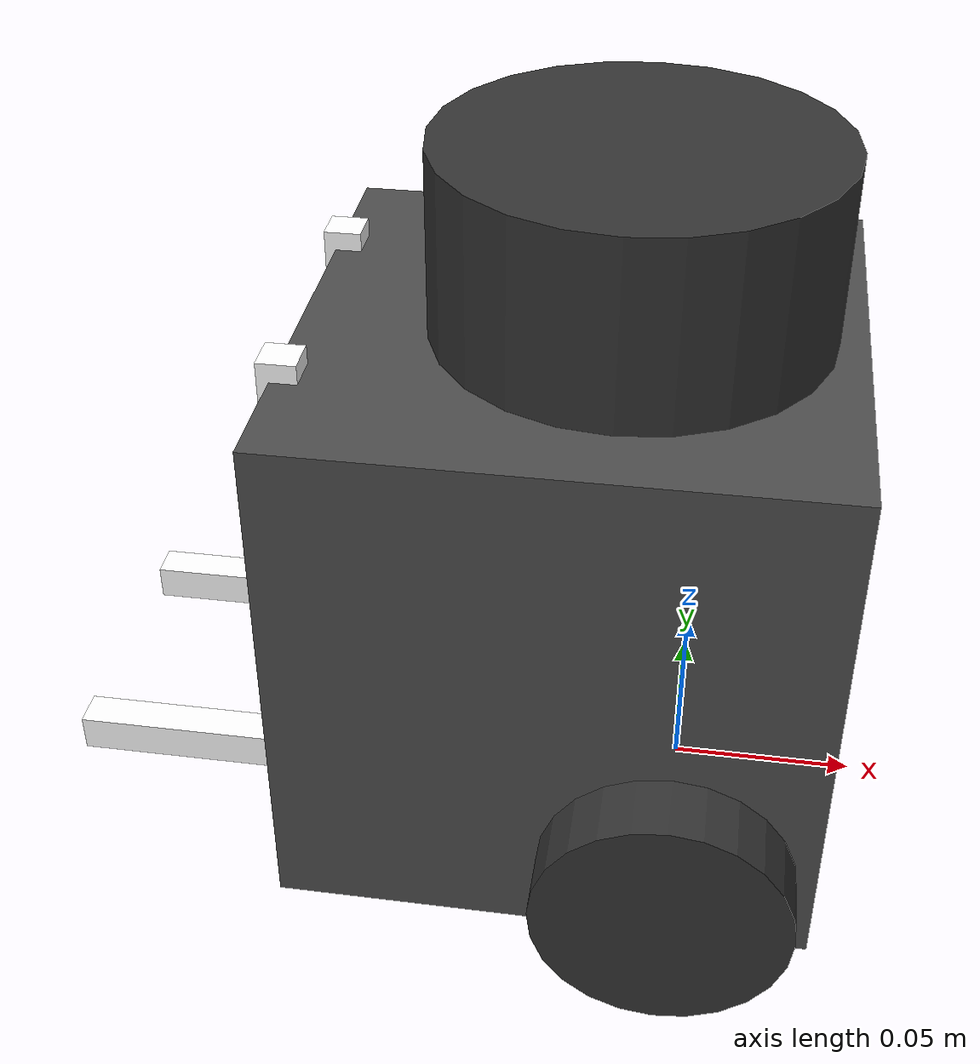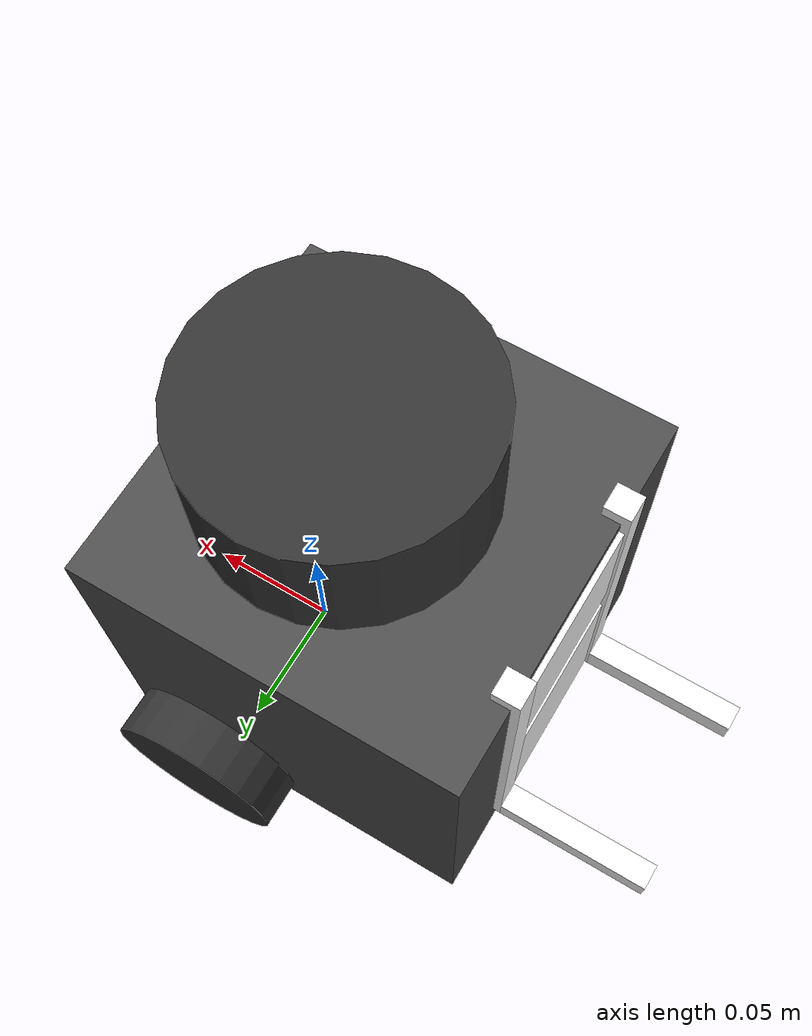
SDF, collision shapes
<?xml version="1.0" ?>
<sdf version="1.6">
  <model name="turtlebot3_burger_cam">
    <pose>0.0 0.0 0.0 0.0 0.0 0.0</pose>

    <link name="base_footprint"/>

    <link name="base_link">

      <inertial>
        <pose>-0.032 0 0.070 0 0 0</pose>
        <inertia>
          <ixx>7.2397393e-01</ixx>
          <ixy>4.686399e-10</ixy>
          <ixz>-1.09525703e-08</ixz>
          <iyy>7.2397393e-01</iyy>
          <iyz>2.8582649e-09</iyz>
          <izz>6.53050163e-01</izz>
        </inertia>
        <mass>8.2573504e-01</mass>
      </inertial>

      <collision name="base_collision">
        <pose>-0.032 0 0.070 0 0 0</pose>
        <geometry>
          <box>
            <size>0.140 0.140 0.140</size>
          </box>
        </geometry>
      </collision>

      <visual name="base_visual">
        <pose>-0.032 0 0 0 0 0</pose>
        <geometry>
          <mesh>
            <uri>model://turtlebot3_common/meshes/bases/burger_base.stl</uri>
            <scale>0.001 0.001 0.001</scale>
          </mesh>
        </geometry>
        <material>
          <ambient>0.3 0.3 0.3 1.0</ambient>
          <diffuse>0.3 0.3 0.3 1.0</diffuse>
        </material>
      </visual>
    </link>

    <link name="imu_link">
      <sensor name="tb3_imu" type="imu">
        <always_on>true</always_on>
        <update_rate>200</update_rate>
        <topic>imu</topic>
        <imu>
          <angular_velocity>
            <x>
              <noise type="gaussian">
                <mean>0.0</mean>
                <stddev>2e-4</stddev>
              </noise>
            </x>
            <y>
              <noise type="gaussian">
                <mean>0.0</mean>
                <stddev>2e-4</stddev>
              </noise>
            </y>
            <z>
              <noise type="gaussian">
                <mean>0.0</mean>
                <stddev>2e-4</stddev>
              </noise>
            </z>
          </angular_velocity>
          <linear_acceleration>
            <x>
              <noise type="gaussian">
                <mean>0.0</mean>
                <stddev>1.7e-2</stddev>
              </noise>
            </x>
            <y>
              <noise type="gaussian">
                <mean>0.0</mean>
                <stddev>1.7e-2</stddev>
              </noise>
            </y>
            <z>
              <noise type="gaussian">
                <mean>0.0</mean>
                <stddev>1.7e-2</stddev>
              </noise>
            </z>
          </linear_acceleration>
        </imu>
      </sensor>
    </link>

    <link name="base_scan">
      <inertial>
        <pose>-0.020 0 0.161 0 0 0</pose>
        <inertia>
          <ixx>0.001</ixx>
          <ixy>0.000</ixy>
          <ixz>0.000</ixz>
          <iyy>0.001</iyy>
          <iyz>0.000</iyz>
          <izz>0.001</izz>
        </inertia>
        <mass>0.114</mass>
      </inertial>

      <collision name="lidar_sensor_collision">
        <pose>-0.020 0 0.161 0 0 0</pose>
        <geometry>
          <cylinder>
            <radius>0.0508</radius>
            <length>0.055</length>
          </cylinder>
        </geometry>
      </collision>

      <visual name="lidar_sensor_visual">
        <pose>-0.032 0 0.171 0 0 0</pose>
        <geometry>
          <mesh>
            <uri>model://turtlebot3_common/meshes/sensors/lds.stl</uri>
            <scale>0.001 0.001 0.001</scale>
          </mesh>
        </geometry>
        <material>
          <ambient>0.2 0.2 0.2 1.0</ambient>
          <diffuse>0.2 0.2 0.2 1.0</diffuse>
        </material>
      </visual>

      <sensor name="hls_lfcd_lds" type="gpu_lidar">
        <always_on>true</always_on>
        <visualize>false</visualize>
        <pose>-0.032 0 0.171 0 0 0</pose>
        <update_rate>5</update_rate>
        <topic>scan</topic>
        <gz_frame_id>base_scan</gz_frame_id>
        <lidar>
          <scan>
            <horizontal>
              <samples>360</samples>
              <resolution>1.000000</resolution>
              <min_angle>0.000000</min_angle>
              <max_angle>6.280000</max_angle>
            </horizontal>
          </scan>
          <range>
            <min>0.120000</min>
            <max>3.5</max>
            <resolution>0.015000</resolution>
          </range>
          <noise>
            <type>gaussian</type>
            <mean>0.0</mean>
            <stddev>0.01</stddev>
          </noise>
        </lidar>
      </sensor>
    </link>

    <link name="wheel_left_link">

      <inertial>
        <pose>0 0.08 0.023 -1.57 0 0</pose>
        <inertia>
          <ixx>1.8158194e-03</ixx>
          <ixy>-9.3392e-12</ixy>
          <ixz>1.04909e-11</ixz>
          <iyy>3.2922126e-03</iyy>
          <iyz>5.75694e-11</iyz>
          <izz>1.8158194e-03</izz>
        </inertia>
        <mass>2.8498940e-02</mass>
      </inertial>

      <collision name="wheel_left_collision">
        <pose>0 0.08 0.023 -1.57 0 0</pose>
        <geometry>
          <cylinder>
            <radius>0.033</radius>
            <length>0.018</length>
          </cylinder>
        </geometry>
        <surface>
          <!-- This friction pamareter don't contain reliable data!! -->
          <friction>
            <ode>
              <mu>100000.0</mu>
              <mu2>100000.0</mu2>
              <fdir1>0 0 0</fdir1>
              <slip1>0.0</slip1>
              <slip2>0.0</slip2>
            </ode>
          </friction>
          <contact>
            <ode>
              <soft_cfm>0</soft_cfm>
              <soft_erp>0.2</soft_erp>
              <kp>1e+5</kp>
              <kd>1</kd>
              <max_vel>0.01</max_vel>
              <min_depth>0.001</min_depth>
            </ode>
          </contact>
        </surface>
      </collision>

      <visual name="wheel_left_visual">
        <pose>0 0.08 0.023 0 0 0</pose>
        <geometry>
          <mesh>
            <uri>model://turtlebot3_common/meshes/wheels/left_tire.stl</uri>
            <scale>0.001 0.001 0.001</scale>
          </mesh>
        </geometry>
        <material>
          <ambient>0.2 0.2 0.2 1.0</ambient>
          <diffuse>0.2 0.2 0.2 1.0</diffuse>
        </material>
      </visual>
    </link>

    <link name="wheel_right_link">

      <inertial>
        <pose>0.0 -0.08 0.023 -1.57 0 0</pose>
        <inertia>
          <ixx>1.8158194e-03</ixx>
          <ixy>-9.3392e-12</ixy>
          <ixz>1.04909e-11</ixz>
          <iyy>3.2922126e-03</iyy>
          <iyz>5.75694e-11</iyz>
          <izz>1.8158194e-03</izz>
        </inertia>
        <mass>2.8498940e-02</mass>
      </inertial>

      <collision name="wheel_right_collision">
        <pose>0.0 -0.08 0.023 -1.57 0 0</pose>
        <geometry>
          <cylinder>
            <radius>0.033</radius>
            <length>0.018</length>
          </cylinder>
        </geometry>
        <surface>
          <!-- This friction pamareter don't contain reliable data!! -->
          <friction>
            <ode>
              <mu>100000.0</mu>
              <mu2>100000.0</mu2>
              <fdir1>0 0 0</fdir1>
              <slip1>0.0</slip1>
              <slip2>0.0</slip2>
            </ode>
          </friction>
          <contact>
            <ode>
              <soft_cfm>0</soft_cfm>
              <soft_erp>0.2</soft_erp>
              <kp>1e+5</kp>
              <kd>1</kd>
              <max_vel>0.01</max_vel>
              <min_depth>0.001</min_depth>
            </ode>
          </contact>
        </surface>
      </collision>

      <visual name="wheel_right_visual">
        <pose>0.0 -0.08 0.023 0 0 0</pose>
        <geometry>
          <mesh>
            <uri>model://turtlebot3_common/meshes/wheels/right_tire.stl</uri>
            <scale>0.001 0.001 0.001</scale>
          </mesh>
        </geometry>
        <material>
          <ambient>0.2 0.2 0.2 1.0</ambient>
          <diffuse>0.2 0.2 0.2 1.0</diffuse>
        </material>
      </visual>
    </link>

    <link name='caster_back_link'>
      <pose>-0.081 0 -0.004 -1.57 0 0</pose>
      <inertial>
        <mass>0.005</mass>
        <inertia>
          <ixx>0.001</ixx>
          <ixy>0.000</ixy>
          <ixz>0.000</ixz>
          <iyy>0.001</iyy>
          <iyz>0.000</iyz>
          <izz>0.001</izz>
        </inertia>
      </inertial>
      <collision name='collision'>
        <geometry>
          <sphere>
            <radius>0.005000</radius>
          </sphere>
        </geometry>
        <surface>
          <contact>
            <ode>
              <soft_cfm>0</soft_cfm>
              <soft_erp>0.2</soft_erp>
              <kp>1e+5</kp>
              <kd>1</kd>
              <max_vel>0.01</max_vel>
              <min_depth>0.001</min_depth>
            </ode>
          </contact>
        </surface>
      </collision>
    </link>

    <link name="camera_link">

      <inertial>
        <pose>0.076 0.0 0.093 0 0 0</pose>
        <inertia>
          <ixx>0.001</ixx>
          <ixy>0.000</ixy>
          <ixz>0.000</ixz>
          <iyy>0.001</iyy>
          <iyz>0.000</iyz>
          <izz>0.001</izz>
        </inertia>
        <mass>0.035</mass>
      </inertial>

      <pose>0.076 0.0 0.093 0 0 0</pose>
      <sensor name="camera" type="wideanglecamera">
        <always_on>true</always_on>
        <visualize>true</visualize>
        <update_rate>30</update_rate>
        <topic>camera/image_raw</topic>
        <gz_frame_id>camera_rgb_frame</gz_frame_id>
        <camera name="pi_cam">
          <camera_info_topic>camera/camera_info</camera_info_topic>
          <horizontal_fov>3.183</horizontal_fov>
          <image>
            <width>320</width>
            <height>240</height>
            <format>R8G8B8</format>
          </image>
          <clip>
            <near>0.03</near>
            <far>100</far>
          </clip>
          <lens>
            <type>custom</type>
            <custom_function>
              <c1>1.05</c1>
              <c2>4</c2>
              <f>1.0</f>
              <fun>tan</fun>
            </custom_function>
            <scale_to_hfov>true</scale_to_hfov>
            <cutoff_angle>3.1415</cutoff_angle>
            <env_texture_size>512</env_texture_size>
          </lens>
        </camera>
      </sensor>
    </link>

    <joint name="base_joint" type="fixed">
      <parent>base_footprint</parent>
      <child>base_link</child>
      <pose>0.0 0.0 0.010 0 0 0</pose>
    </joint>

    <joint name="wheel_left_joint" type="revolute">
      <parent>base_link</parent>
      <child>wheel_left_link</child>
      <pose>0.0 0.08 0.023 -1.57 0 0</pose>
      <axis>
        <xyz>0 0 1</xyz>
        <limit>
          <effort>20</effort>
        </limit>
      </axis>
    </joint>

    <joint name="wheel_right_joint" type="revolute">
      <parent>base_link</parent>
      <child>wheel_right_link</child>
      <pose>0.0 -0.08 0.023 -1.57 0 0</pose>
      <axis>
        <xyz>0 0 1</xyz>
        <limit>
          <effort>20</effort>
        </limit>
      </axis>
    </joint>

    <joint name='caster_back_joint' type='ball'>
      <parent>base_link</parent>
      <child>caster_back_link</child>
    </joint>

    <joint name="imu_joint" type="fixed">
      <parent>base_link</parent>
      <child>imu_link</child>
      <pose>-0.032 0 0.068 0 0 0</pose>
      <axis>
        <xyz>0 0 1</xyz>
      </axis>
    </joint>

    <joint name="lidar_joint" type="fixed">
      <parent>base_link</parent>
      <child>base_scan</child>
      <pose>-0.032 0 0.171 0 0 0</pose>
      <axis>
        <xyz>0 0 1</xyz>
      </axis>
    </joint>

    <joint name="camera_joint" type="fixed">
      <parent>base_link</parent>
      <child>camera_link</child>
      <pose>0.040 -0.000 0.110 0 0 0</pose>
      <axis>
        <xyz>0 0 1</xyz>
      </axis>
    </joint>

    <joint name="joint_base1" type="fixed">
      <parent>base_link</parent>
      <child>link_base1</child>
    </joint>

    <link name="link_base1">
      <pose>-0.1 0.0 0.11 0 0 0</pose>

      <inertial>
        <mass>0.0</mass>
        <inertia>
          <ixx>0</ixx>
          <ixy>0</ixy>
          <ixz>0</ixz>
          <iyy>0</iyy>
          <iyz>0</iyz>
          <izz>0</izz>
        </inertia>
      </inertial>

      <visual name="link_base1_visual">
        <geometry>
          <box>
            <size>0.008 0.06 0.05</size>
          </box>
        </geometry>
        <material>
          <ambient>1 1 1 1</ambient>
          <diffuse>1 1 1 1</diffuse>
        </material>

      </visual>
      <collision name="link_base1_collision">
        <geometry>
          <box>
            <size>0.008 0.06 0.05</size>
          </box>
        </geometry>
      </collision>
    </link>

    <joint name="joint_base2" type="fixed">
      <parent>base_link</parent>
      <child>link_base2</child>
    </joint>

    <link name="link_base2">
      <pose>-0.1 0.0 0.045 0 0 0</pose>

      <inertial>
        <mass>0.0</mass>
        <inertia>
          <ixx>0</ixx>
          <ixy>0</ixy>
          <ixz>0</ixz>
          <iyy>0</iyy>
          <iyz>0</iyz>
          <izz>0</izz>
        </inertia>
      </inertial>

      <visual name="link_base2_visual">
        <geometry>
          <box>
            <size>0.008 0.06 0.06</size>
          </box>
        </geometry>
        <material>
          <ambient>1 1 1 1</ambient>
          <diffuse>1 1 1 1</diffuse>
        </material>

      </visual>
      <collision name="link_base2_collision">
        <geometry>
          <box>
            <size>0.008 0.06 0.06</size>
          </box>
        </geometry>
      </collision>
    </link>

    <joint name="joint1" type="fixed">
      <parent>base_link</parent>
      <child>link1</child>
    </joint>

    <link name="link1">
      <pose>-0.1 0.035 0.08 0 0 0</pose>

      <inertial>
        <mass>0.0</mass>
        <inertia>
          <ixx>0</ixx>
          <ixy>0</ixy>
          <ixz>0</ixz>
          <iyy>0</iyy>
          <iyz>0</iyz>
          <izz>0</izz>
        </inertia>
      </inertial>

      <visual name="link1_visual">
        <geometry>
          <box>
            <size>0.01 0.01 0.13</size>
          </box>
        </geometry>
        <material>
          <ambient>1 1 1 1</ambient>
          <diffuse>1 1 1 1</diffuse>
        </material>

      </visual>
      <collision name="link1_collision">
        <geometry>
          <box>
            <size>0.01 0.01 0.13</size>
          </box>
        </geometry>
      </collision>
    </link>

    <joint name="joint2" type="fixed">
      <parent>base_link</parent>
      <child>link2</child>
    </joint>

    <link name="link2">
      <pose>-0.1 -0.035 0.08 0 0 0</pose>

      <inertial>
        <mass>0.0</mass>
        <inertia>
          <ixx>0</ixx>
          <ixy>0</ixy>
          <ixz>0</ixz>
          <iyy>0</iyy>
          <iyz>0</iyz>
          <izz>0</izz>
        </inertia>
      </inertial>

      <visual name="link2_visual">
        <geometry>
          <box>
            <size>0.01 0.01 0.13</size>
          </box>
        </geometry>
        <material>
          <ambient>1 1 1 1</ambient>
          <diffuse>1 1 1 1</diffuse>
        </material>

      </visual>
      <collision name="link2_collision">
        <geometry>
          <box>
            <size>0.01 0.01 0.13</size>
          </box>
        </geometry>
      </collision>
    </link>

    <joint name="joint3" type="fixed">
      <parent>link1</parent>
      <child>link3</child>
    </joint>

    <link name="link3">
      <pose>-0.135 0.035 0.02 0 0 0</pose>

      <inertial>
        <mass>0.0</mass>
        <inertia>
          <ixx>0</ixx>
          <ixy>0</ixy>
          <ixz>0</ixz>
          <iyy>0</iyy>
          <iyz>0</iyz>
          <izz>0</izz>
        </inertia>
      </inertial>

      <visual name="link3_visual">
        <geometry>
          <box>
            <size>0.06 0.01 0.01</size>
          </box>
        </geometry>
        <material>
          <ambient>1 1 1 1</ambient>
          <diffuse>1 1 1 1</diffuse>
        </material>

      </visual>
      <collision name="link3_collision">
        <geometry>
          <box>
            <size>0.06 0.01 0.01</size>
          </box>
        </geometry>
      </collision>
    </link>

    <joint name="joint4" type="fixed">
      <parent>link2</parent>
      <child>link4</child>
    </joint>

    <link name="link4">
      <pose>-0.135 -0.035 0.02 0 0 0</pose>

      <inertial>
        <mass>0.0</mass>
        <inertia>
          <ixx>0</ixx>
          <ixy>0</ixy>
          <ixz>0</ixz>
          <iyy>0</iyy>
          <iyz>0</iyz>
          <izz>0</izz>
        </inertia>
      </inertial>

      <visual name="link4_visual">
        <geometry>
          <box>
            <size>0.06 0.01 0.01</size>
          </box>
        </geometry>
        <material>
          <ambient>1 1 1 1</ambient>
          <diffuse>1 1 1 1</diffuse>
        </material>
      </visual>
      <collision name="link4_collision">
        <geometry>
          <box>
            <size>0.06 0.01 0.01</size>
          </box>
        </geometry>
      </collision>
    </link>

    <plugin filename="gz-sim-diff-drive-system" name="gz::sim::systems::DiffDrive">

      <!-- wheels -->
      <left_joint>wheel_left_joint</left_joint>
      <right_joint>wheel_right_joint</right_joint>

      <!-- kinematics -->
      <wheel_separation>0.160</wheel_separation>
      <wheel_radius>0.033</wheel_radius>

      <!-- limits -->
      <max_linear_acceleration>1.0</max_linear_acceleration>

       <topic>cmd_vel</topic>

       <odom_topic>odom</odom_topic>
       <frame_id>odom</frame_id>
       <child_frame_id>base_footprint</child_frame_id>
       <odom_publisher_frequency>30</odom_publisher_frequency>

       <tf_topic>/tf</tf_topic>

    </plugin>

    <plugin filename="gz-sim-joint-state-publisher-system" name="gz::sim::systems::JointStatePublisher">
      <topic>joint_states</topic>
      <joint_name>wheel_left_joint</joint_name>
      <joint_name>wheel_right_joint</joint_name>
    </plugin>

  </model>
</sdf>
